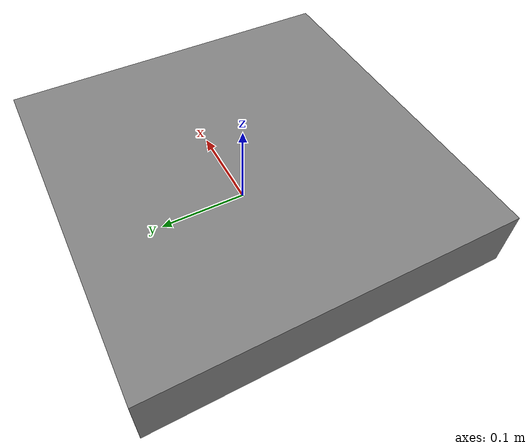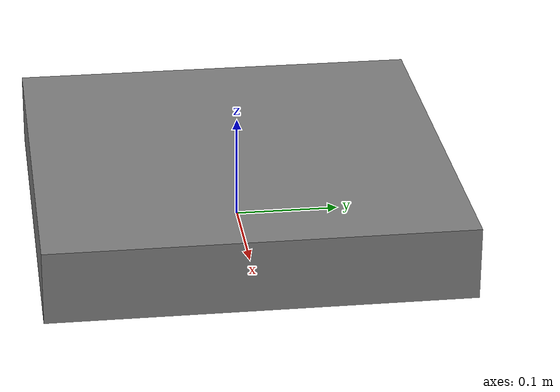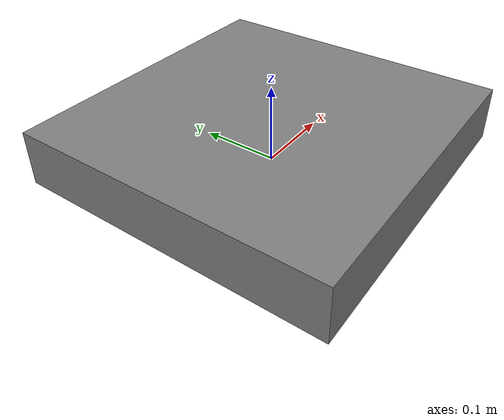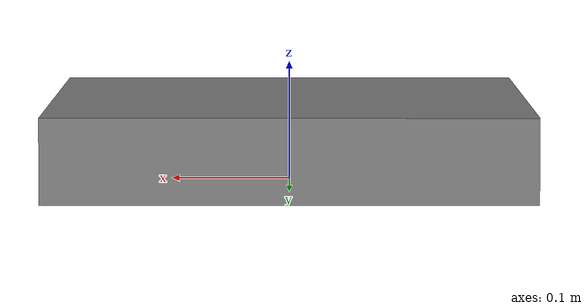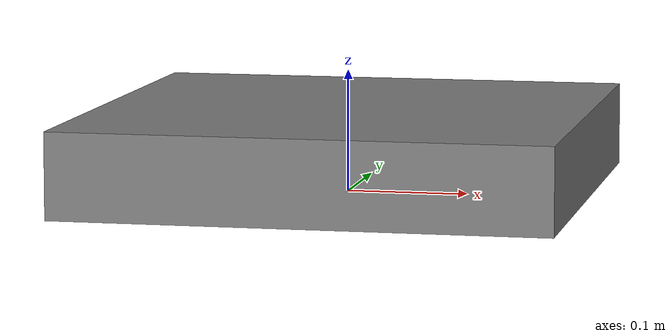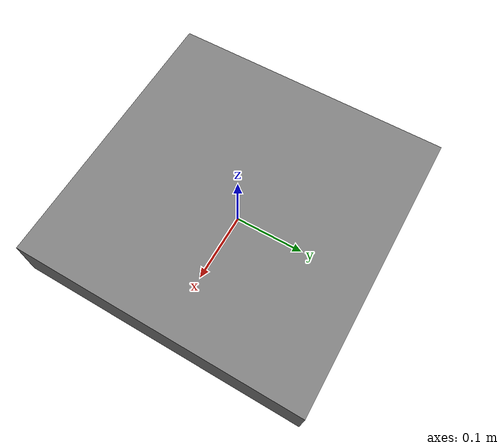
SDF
<?xml version="1.0"?>
<sdf version="1.7">
  <model name="box">
    <link name="box_body">
      <visual name="box_visual">
        <pose> 0 0 0.035 0 0 0</pose>
        <geometry>
          <box>
            <size>0.4 0.4 0.07</size>
          </box>
        </geometry>
        <material>
          <diffuse>0.5 0.5 0.5 1</diffuse>
        </material>
      </visual>
      <collision name="box">
        <pose> 0 0 0.035 0 0 0</pose>
        <geometry>
          <box>
            <size>0.4 0.4 0.07</size>
          </box>
        </geometry>
        <drake:proximity_properties>
          <drake:compliant_hydroelastic/>
          <drake:hydroelastic_modulus>1e7</drake:hydroelastic_modulus>
          <drake:mu_dynamic>0.5</drake:mu_dynamic>
          <drake:hunt_crossley_dissipation>1.25</drake:hunt_crossley_dissipation>
        </drake:proximity_properties>
      </collision>
    </link>
  </model>
</sdf>
